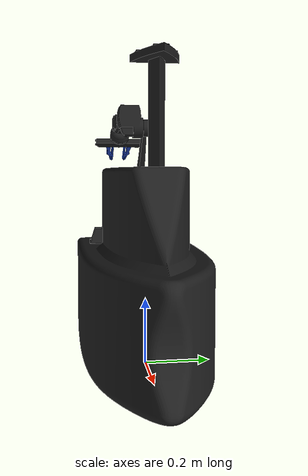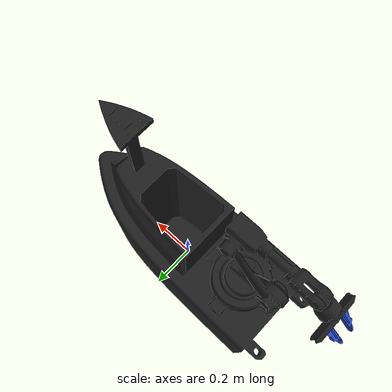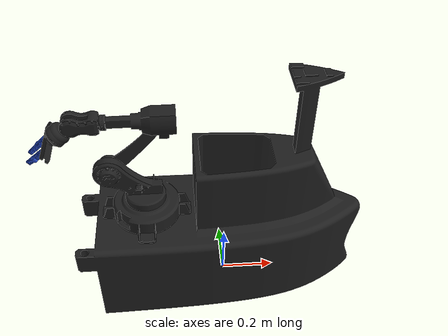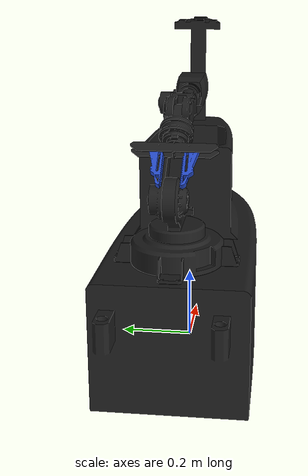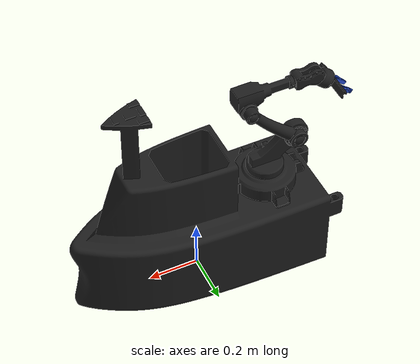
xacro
<?xml version="1.0" ?>
<robot name="ros_robot" xmlns:xacro="http://www.ros.org/wiki/xacro" >

<xacro:include filename="$(find ros_robot_description)/urdf/RobotArm/RobotArm.xacro" />
<xacro:include filename="$(find ros_robot_description)/urdf/RobotArm/RobotArm.gazebo" />
<xacro:include filename="$(find ros_robot_description)/urdf/RobotArm/RobotArm.trans" />

<gazebo>
  <plugin name="control" filename="libgazebo_ros_control.so"/>
</gazebo>

<link name="base_link">

  <inertial>
    <origin xyz="-0.03405684570032273 0.00013676637886197947 0.20520744004115304" rpy="0 0 0"/>
    <mass value="869.3591197326726"/>
    <inertia ixx="27.740951" iyy="79.996007" izz="72.451196" ixy="0.012915" iyz="-0.000998" ixz="-5.997035"/>
  </inertial>
  <visual>
    <origin xyz="0 0 0" rpy="0 0 0"/>
    <geometry>
      <mesh filename="package://ros_robot_description/meshes/base_link.stl" scale="0.001 0.001 0.001"/>
    </geometry>
    <material name="paint_enamel_glossy_black"/>
  </visual>
  <collision>
    <origin xyz="-0.034008 -0.000106 -0.045" rpy="0 0 0"/>
    <geometry>
      <mesh filename="package://ros_robot_description/meshes/GarbageBot_1.stl" scale="0.001 0.001 0.001"/>
    </geometry>
  </collision>
</link>

<link name="world_boat_link"/>

<joint name="world_boat_joint" type="fixed">
  <origin xyz="0 0 0" rpy="0 0 0"/>
  <parent link="world_boat_link"/>
  <child link="base_link"/>
</joint>

</robot>

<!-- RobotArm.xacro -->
<robot name="ros_robot" xmlns:xacro="http://www.ros.org/wiki/xacro" >
<link name="ArmBase_1">
  <inertial>
    <origin xyz="0.0011454041878000698 0.0011459188982486657 0.030935981147480862" rpy="0 0 0"/>
    <mass value="23.097311942049508"/>
    <inertia ixx="0.093308" iyy="0.093308" izz="0.170178" ixy="0.002057" iyz="-0.000107" ixz="-0.000107"/>
  </inertial>
  <visual>
    <origin xyz="0.285941 -0.000104 -0.346" rpy="0 0 0"/>
    <geometry>
      <mesh filename="package://ros_robot_description/meshes/ArmBase_1.stl" scale="0.001 0.001 0.001"/>
    </geometry>
    <material name="paint_enamel_glossy_black"/>
  </visual>
  <collision>
    <origin xyz="0.285941 -0.000104 -0.346" rpy="0 0 0"/>
    <geometry>
      <mesh filename="package://ros_robot_description/meshes/ArmBase_1.stl" scale="0.001 0.001 0.001"/>
    </geometry>
  </collision>
</link>

<link name="JawL_1">
  <inertial>
    <origin xyz="-0.03189029458894865 0.010364926026270288 -0.02669858127536817" rpy="0 0 0"/>
    <mass value="0.0018"/>
    <inertia ixx="7e-05" iyy="0.000135" izz="9.2e-05" ixy="1.7e-05" iyz="-1.4e-05" ixz="6.3e-05"/>
  </inertial>
  <visual>
    <origin xyz="0.568431 0.078647 -0.714234" rpy="0 0 0"/>
    <geometry>
      <mesh filename="package://ros_robot_description/meshes/JawL_1.stl" scale="0.001 0.001 0.001"/>
    </geometry>
    <material name="aluminum_anodized_glossy_blue"/>
  </visual>
  <collision>
    <origin xyz="0.568431 0.078647 -0.714234" rpy="0 0 0"/>
    <geometry>
      <mesh filename="package://ros_robot_description/meshes/JawL_1.stl" scale="0.001 0.001 0.001"/>
    </geometry>
  </collision>
</link>

<link name="JawR_1">
  <inertial>
    <origin xyz="-0.031644148141077966 -0.010806778264657124 -0.026615162656639213" rpy="0 0 0"/>
    <mass value="0.0018"/>
    <inertia ixx="7e-05" iyy="0.000133" izz="9.1e-05" ixy="-1.7e-05" iyz="1.5e-05" ixz="6.3e-05"/>
  </inertial>
  <visual>
    <origin xyz="0.569079 -0.014621 -0.714234" rpy="0 0 0"/>
    <geometry>
      <mesh filename="package://ros_robot_description/meshes/JawR_1.stl" scale="0.001 0.001 0.001"/>
    </geometry>
    <material name="aluminum_anodized_glossy_blue"/>
  </visual>
  <collision>
    <origin xyz="0.569079 -0.014621 -0.714234" rpy="0 0 0"/>
    <geometry>
      <mesh filename="package://ros_robot_description/meshes/JawR_1.stl" scale="0.001 0.001 0.001"/>
    </geometry>
  </collision>
</link>

<link name="L6_1">
  <inertial>
    <origin xyz="-0.00803331842765087 -5.6862213045037746e-05 -0.006308097141295432" rpy="0 0 0"/>
    <mass value="0.0018"/>
    <inertia ixx="0.000849" iyy="0.000137" izz="0.000847" ixy="5e-06" iyz="0.0" ixz="2e-06"/>
  </inertial>
  <visual>
    <origin xyz="0.55862 0.032193 -0.722736" rpy="0 0 0"/>
    <geometry>
      <mesh filename="package://ros_robot_description/meshes/L6_1.stl" scale="0.001 0.001 0.001"/>
    </geometry>
    <material name="paint_enamel_glossy_black"/>
  </visual>
  <collision>
    <origin xyz="0.55862 0.032193 -0.722736" rpy="0 0 0"/>
    <geometry>
      <mesh filename="package://ros_robot_description/meshes/L6_1.stl" scale="0.001 0.001 0.001"/>
    </geometry>
  </collision>
</link>

<link name="L5_1">
  <inertial>
    <origin xyz="-0.036796724882995124 -0.017742007672748007 -0.0309788762675699" rpy="0 0 0"/>
    <mass value="0.0018"/>
    <inertia ixx="0.00089" iyy="0.001035" izz="0.00093" ixy="-7e-06" iyz="6e-06" ixz="0.000115"/>
  </inertial>
  <visual>
    <origin xyz="0.494564 0.014147 -0.77659" rpy="0 0 0"/>
    <geometry>
      <mesh filename="package://ros_robot_description/meshes/L5_1.stl" scale="0.001 0.001 0.001"/>
    </geometry>
    <material name="paint_enamel_glossy_black"/>
  </visual>
  <collision>
    <origin xyz="0.494564 0.014147 -0.77659" rpy="0 0 0"/>
    <geometry>
      <mesh filename="package://ros_robot_description/meshes/L5_1.stl" scale="0.001 0.001 0.001"/>
    </geometry>
  </collision>
</link>

<link name="L4_1">
  <inertial>
    <origin xyz="-0.07130925015296014 -0.0004956819947762731 3.779030740558298e-07" rpy="0 0 0"/>
    <mass value="0.0018"/>
    <inertia ixx="0.001409" iyy="0.00355" izz="0.003934" ixy="-1.5e-05" iyz="0.0" ixz="0.0"/>
  </inertial>
  <visual>
    <origin xyz="0.386376 0.031395 -0.77659" rpy="0 0 0"/>
    <geometry>
      <mesh filename="package://ros_robot_description/meshes/L4_1.stl" scale="0.001 0.001 0.001"/>
    </geometry>
    <material name="paint_enamel_glossy_black"/>
  </visual>
  <collision>
    <origin xyz="0.386376 0.031395 -0.77659" rpy="0 0 0"/>
    <geometry>
      <mesh filename="package://ros_robot_description/meshes/L4_1.stl" scale="0.001 0.001 0.001"/>
    </geometry>
  </collision>
</link>

<link name="L3_1">
  <inertial>
    <origin xyz="-0.03328919185654228 -0.028027880306747386 0.029701409398983136" rpy="0 0 0"/>
    <mass value="0.0018"/>
    <inertia ixx="0.005791" iyy="0.022845" izz="0.021796" ixy="-0.000731" iyz="-0.000651" ixz="-0.001282"/>
  </inertial>
  <visual>
    <origin xyz="0.205795 -0.000662 -0.74059" rpy="0 0 0"/>
    <geometry>
      <mesh filename="package://ros_robot_description/meshes/L3_1.stl" scale="0.001 0.001 0.001"/>
    </geometry>
    <material name="paint_enamel_glossy_black"/>
  </visual>
  <collision>
    <origin xyz="0.205795 -0.000662 -0.74059" rpy="0 0 0"/>
    <geometry>
      <mesh filename="package://ros_robot_description/meshes/L3_1.stl" scale="0.001 0.001 0.001"/>
    </geometry>
  </collision>
</link>

<link name="L2_1">
  <inertial>
    <origin xyz="0.07950139518636501 0.029355377391545236 0.07574626013664454" rpy="0 0 0"/>
    <mass value="0.0018"/>
    <inertia ixx="0.022491" iyy="0.044645" izz="0.022859" ixy="-4.4e-05" iyz="8.9e-05" ixz="0.021449"/>
  </inertial>
  <visual>
    <origin xyz="0.40378 0.000715 -0.5426" rpy="0 0 0"/>
    <geometry>
      <mesh filename="package://ros_robot_description/meshes/L2_1.stl" scale="0.001 0.001 0.001"/>
    </geometry>
    <material name="paint_enamel_glossy_black"/>
  </visual>
  <collision>
    <origin xyz="0.40378 0.000715 -0.5426" rpy="0 0 0"/>
    <geometry>
      <mesh filename="package://ros_robot_description/meshes/L2_1.stl" scale="0.001 0.001 0.001"/>
    </geometry>
  </collision>
</link>

<link name="L1_1">
  <inertial>
    <origin xyz="-0.04661521084736314 -0.003531900009707762 0.05173767169330279" rpy="0 0 0"/>
    <mass value="0.0018"/>
    <inertia ixx="0.031917" iyy="0.062523" izz="0.04245" ixy="-0.00181" iyz="-0.001638" ixz="-0.023928"/>
  </inertial>
  <visual>
    <origin xyz="0.285941 -0.000104 -0.4306" rpy="0 0 0"/>
    <geometry>
      <mesh filename="package://ros_robot_description/meshes/L1_1.stl" scale="0.001 0.001 0.001"/>
    </geometry>
    <material name="paint_enamel_glossy_black"/>
  </visual>
  <collision>
    <origin xyz="0.285941 -0.000104 -0.4306" rpy="0 0 0"/>
    <geometry>
      <mesh filename="package://ros_robot_description/meshes/L1_1.stl" scale="0.001 0.001 0.001"/>
    </geometry>
  </collision>
</link>

<joint name="JawL" type="prismatic">
  <origin xyz="-0.009811 -0.046454 -0.008502" rpy="0 0 0"/>
  <parent link="L6_1"/>
  <child link="JawL_1"/>
  <axis xyz="0.0 0.999966 -0.008286"/>
  <limit upper="0.005" lower="-0.003" effort="100" velocity="100"/>
</joint>

<joint name="JawR" type="prismatic">
  <origin xyz="-0.010459 0.046814 -0.008502" rpy="0 0 0"/>
  <parent link="L6_1"/>
  <child link="JawR_1"/>
  <axis xyz="0.0 0.999966 -0.008286"/>
  <limit upper="0.0021" lower="-0.005" effort="100" velocity="100"/>
</joint>

<joint name="L6" type="revolute">
  <origin xyz="-0.064056 -0.018046 -0.053854" rpy="0 0 0"/>
  <parent link="L5_1"/>
  <child link="L6_1"/>
  <axis xyz="-0.766026 -0.005327 -0.642788"/>
  <limit upper="3.141593" lower="-3.141593" effort="100" velocity="100"/>
</joint>

<joint name="L5" type="revolute">
  <origin xyz="-0.108188 0.017248 0.0" rpy="0 0 0"/>
  <parent link="L4_1"/>
  <child link="L5_1"/>
  <axis xyz="-0.006953 0.999976 -0.0"/>
  <limit upper="2.617994" lower="-1.308997" effort="100" velocity="100"/>
</joint>

<joint name="L4" type="revolute">
  <origin xyz="-0.180581 -0.032057 0.036" rpy="0 0 0"/>
  <parent link="L3_1"/>
  <child link="L4_1"/>
  <axis xyz="-0.999976 -0.006953 0.0"/>
  <limit upper="3.141593" lower="-3.141593" effort="100" velocity="100"/>
</joint>

<joint name="L3" type="revolute">
  <origin xyz="0.197985 0.001377 0.19799" rpy="0 0 0"/>
  <parent link="L2_1"/>
  <child link="L3_1"/>
  <axis xyz="0.006953 -0.999976 0.0"/>
  <limit upper="0.610865" lower="-4.101524" effort="100" velocity="100"/>
</joint>

<joint name="L2" type="revolute">
  <origin xyz="-0.117839 -0.000819 0.112" rpy="0 0 0"/>
  <parent link="L1_1"/>
  <child link="L2_1"/>
  <axis xyz="-0.006953 0.999976 -0.0"/>
  <limit upper="1.134464" lower="-3.490659" effort="100" velocity="100"/>
</joint>

<joint name="L1" type="revolute">
  <origin xyz="0.0 0.0 0.0856" rpy="0 0 0"/>
  <parent link="ArmBase_1"/>
  <child link="L1_1"/>
  <axis xyz="0.0 0.0 1.0"/>
  <limit upper="2.181662" lower="-2.181662" effort="100" velocity="100"/>
</joint>

<joint name="ArmBaseLink" type="fixed">
  <origin xyz="-0.285941 0.000104 0.346" rpy="0 0 0"/>
  <parent link="base_link"/>
  <child link="ArmBase_1"/>
</joint>

</robot>
